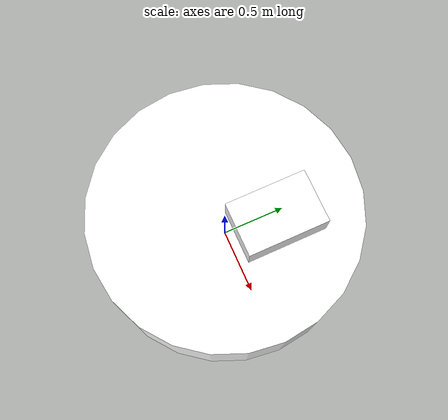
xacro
<?xml version="1.0"?>
<robot name="torobo" xmlns:xacro="http://ros.org/wiki/xacro">

  <!-- =============== Constants =============== -->
  <xacro:property name="M_PI" value="3.1415926535897931"/>

  <!-- =============== Load Dependencies =============== -->
  <xacro:include filename="$(find torobo_dynamics)/test/resource/box.gazebo"/>

  <!-- =============== Link & Joint =============== -->
  <link name="world"/>

  <joint name="joint_base" type="fixed">
    <origin xyz="0 0 0.3"/>
    <parent link="world"/>
    <child link="base"/>
  </joint>

  <link name="base">
    <visual>
      <geometry>
        <cylinder length="0.6" radius="1.0"/>
      </geometry>
      <material name="white">
        <color rgba="1 1 1 1"/>
      </material>
    </visual>
    <collision>
      <geometry>
        <cylinder length="0.6" radius="1.0" />
      </geometry>
    </collision>
    <inertial>
      <origin xyz="0 0 0.3"/>
      <mass value="1"/>
      <inertia
        ixx="1" ixy="0" ixz="0"
        iyy="1" iyz="0" izz="1"/>
    </inertial>
  </link>

  <joint name="box_joint" type="revolute">
    <parent link="base"/>
    <child link="box_link"/>
    <origin xyz="0 0 0.3" rpy="0 0 0"/>
    <axis xyz="0 0 1"/>
    <limit lower="${-160*M_PI/180}" upper="${160*M_PI/180}" effort="110" velocity="${110*M_PI/180}"/>
  </joint>

  <link name="box_link">
    <visual>
      <geometry>
        <box size="0.4 0.6 0.2"/>
      </geometry>
      <origin xyz="0.2 0.3 0.1" rpy="0 0 0"/>
      <material name="white">
        <color rgba="1 1 1 1"/>
      </material>
    </visual>
    <collision>
      <geometry>
        <box size="0.4 0.6 0.2"/>
      </geometry>
      <origin xyz="0.2 0.3 0.1" rpy="0 0 0"/>
    </collision>
    <inertial>
      <origin xyz="0.2 0.3 0.1"/>
      <mass value="1"/>
      <inertia
        ixx="0.133333" ixy="-0.06" ixz="-0.02"
        iyy="0.066667" iyz="-0.03" izz="0.173333"/>
    </inertial>
  </link>

</robot>
